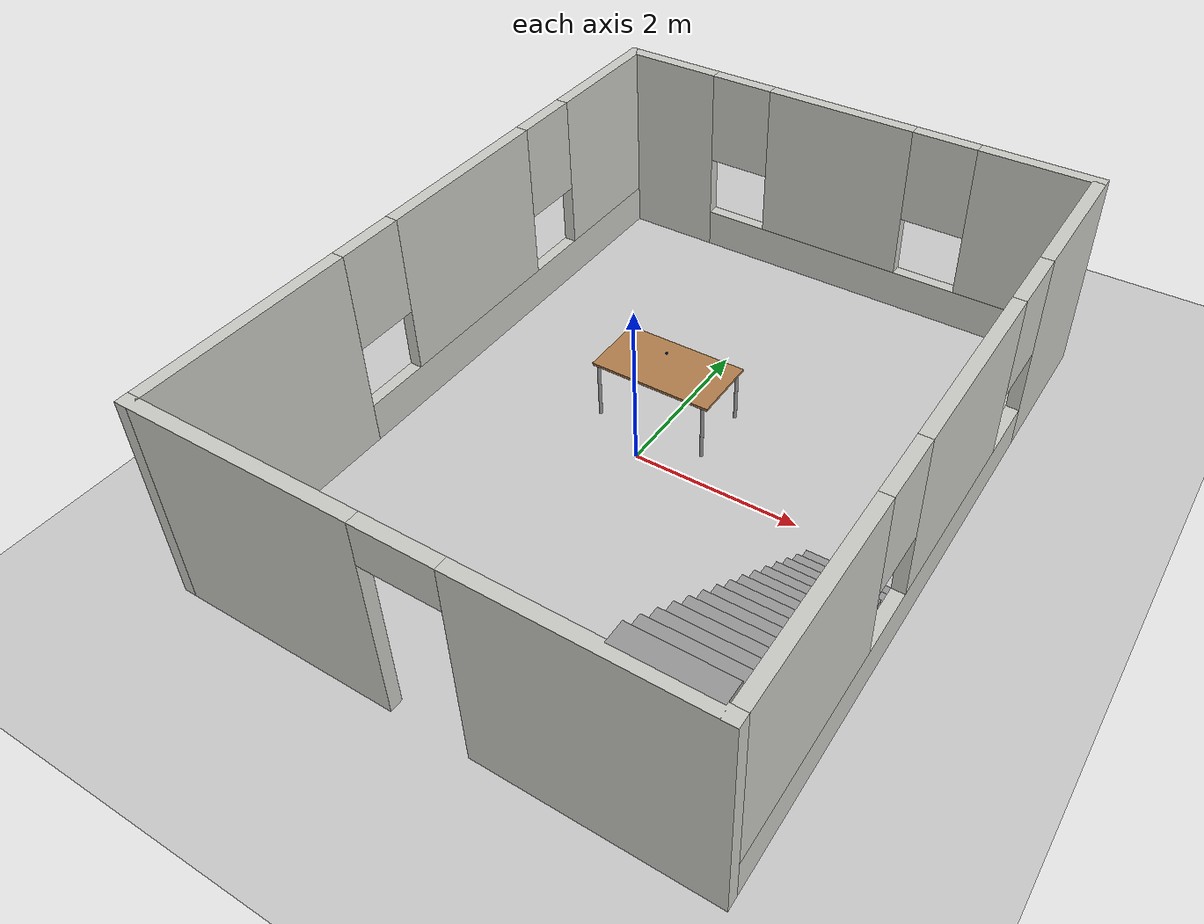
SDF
<sdf version="1.6">
 <world name="default">
  <model name="ground_plane">
   <static>1</static>
   <link name="link">
    <collision name="collision">
     <geometry><plane><normal>0 0 1</normal><size>100 100</size></plane></geometry>
     <surface><friction><ode><mu>100</mu><mu2>50</mu2></ode></friction></surface>
    </collision>
    <visual name="visual">
     <cast_shadows>0</cast_shadows>
     <geometry><plane><normal>0 0 1</normal><size>100 100</size></plane></geometry>
     <material>
      <script><uri>file://media/materials/scripts/gazebo.material</uri><name>Gazebo/Grey</name></script>
     </material>
    </visual>
   </link>
  </model>
  <model name="table">
   <static>1</static>
   <link name="table">
    <collision name="surface">
     <pose>0 0 1 0 -0 0</pose>
     <geometry><box><size>1.5 0.8 0.03</size></box></geometry>
     <surface><friction><ode><mu>0.6</mu><mu2>0.6</mu2></ode></friction></surface>
    </collision>
    <visual name="visual1">
     <pose>0 0 1 0 -0 0</pose>
     <geometry><box><size>1.5 0.8 0.03</size></box></geometry>
     <material>
      <script><uri>file://media/materials/scripts/gazebo.material</uri><name>Gazebo/Wood</name></script>
     </material>
    </visual>
    <collision name="front_left_leg">
     <pose>0.68 0.38 0.5 0 -0 0</pose>
     <geometry><cylinder><radius>0.02</radius><length>1</length></cylinder></geometry>
    </collision>
    <visual name="front_left_leg">
     <pose>0.68 0.38 0.5 0 -0 0</pose>
     <geometry><cylinder><radius>0.02</radius><length>1</length></cylinder></geometry>
     <material>
      <script><uri>file://media/materials/scripts/gazebo.material</uri><name>Gazebo/Grey</name></script>
     </material>
    </visual>
    <collision name="front_right_leg">
     <pose>0.68 -0.38 0.5 0 -0 0</pose>
     <geometry><cylinder><radius>0.02</radius><length>1</length></cylinder></geometry>
    </collision>
    <visual name="front_right_leg">
     <pose>0.68 -0.38 0.5 0 -0 0</pose>
     <geometry><cylinder><radius>0.02</radius><length>1</length></cylinder></geometry>
     <material>
      <script><uri>file://media/materials/scripts/gazebo.material</uri><name>Gazebo/Grey</name></script>
     </material>
    </visual>
    <collision name="back_right_leg">
     <pose>-0.68 -0.38 0.5 0 -0 0</pose>
     <geometry><cylinder><radius>0.02</radius><length>1</length></cylinder></geometry>
    </collision>
    <visual name="back_right_leg">
     <pose>-0.68 -0.38 0.5 0 -0 0</pose>
     <geometry><cylinder><radius>0.02</radius><length>1</length></cylinder></geometry>
     <material>
      <script><uri>file://media/materials/scripts/gazebo.material</uri><name>Gazebo/Grey</name></script>
     </material>
    </visual>
    <collision name="back_left_leg">
     <pose>-0.68 0.38 0.5 0 -0 0</pose>
     <geometry><cylinder><radius>0.02</radius><length>1</length></cylinder></geometry>
    </collision>
    <visual name="back_left_leg">
     <pose>-0.68 0.38 0.5 0 -0 0</pose>
     <geometry><cylinder><radius>0.02</radius><length>1</length></cylinder></geometry>
     <material>
      <script><uri>file://media/materials/scripts/gazebo.material</uri><name>Gazebo/Grey</name></script>
     </material>
    </visual>
   </link>
   <pose>-0.08 0.78 -0.29 0 -0 0</pose>
  </model>
  <model name="home">
   <pose>0.349793 0.122852 0 0 -0 0</pose>
   <link name="Stairs_0">
    <visual name="Stairs_0_Visual_0">
     <pose>2.45797 -0.622751 0.083333 0 -0 0</pose>
     <geometry><box><size>1 0.233333 0.166667</size></box></geometry>
     <material>
      <script><uri>file://media/materials/scripts/gazebo.material</uri><name>Gazebo/Grey</name></script>
      <ambient>1 1 1 1</ambient>
     </material>
     <meta><layer>0</layer></meta>
    </visual>
    <collision name="Stairs_0_Collision_0">
     <geometry><box><size>1 0.233333 0.166667</size></box></geometry>
     <pose>2.45797 -0.622751 0.083333 0 -0 0</pose>
    </collision>
    <visual name="Stairs_0_Visual_1">
     <pose>2.45797 -0.856085 0.25 0 -0 0</pose>
     <geometry><box><size>1 0.233333 0.166667</size></box></geometry>
     <material>
      <script><uri>file://media/materials/scripts/gazebo.material</uri><name>Gazebo/Grey</name></script>
      <ambient>1 1 1 1</ambient>
     </material>
     <meta><layer>0</layer></meta>
    </visual>
    <collision name="Stairs_0_Collision_1">
     <geometry><box><size>1 0.233333 0.166667</size></box></geometry>
     <pose>2.45797 -0.856085 0.25 0 -0 0</pose>
    </collision>
    <visual name="Stairs_0_Visual_2">
     <pose>2.45797 -1.08942 0.416667 0 -0 0</pose>
     <geometry><box><size>1 0.233333 0.166667</size></box></geometry>
     <material>
      <script><uri>file://media/materials/scripts/gazebo.material</uri><name>Gazebo/Grey</name></script>
      <ambient>1 1 1 1</ambient>
     </material>
     <meta><layer>0</layer></meta>
    </visual>
    <collision name="Stairs_0_Collision_2">
     <geometry><box><size>1 0.233333 0.166667</size></box></geometry>
     <pose>2.45797 -1.08942 0.416667 0 -0 0</pose>
    </collision>
    <visual name="Stairs_0_Visual_3">
     <pose>2.45797 -1.32275 0.583333 0 -0 0</pose>
     <geometry><box><size>1 0.233333 0.166667</size></box></geometry>
     <material>
      <script><uri>file://media/materials/scripts/gazebo.material</uri><name>Gazebo/Grey</name></script>
      <ambient>1 1 1 1</ambient>
     </material>
     <meta><layer>0</layer></meta>
    </visual>
    <collision name="Stairs_0_Collision_3">
     <geometry><box><size>1 0.233333 0.166667</size></box></geometry>
     <pose>2.45797 -1.32275 0.583333 0 -0 0</pose>
    </collision>
    <visual name="Stairs_0_Visual_4">
     <pose>2.45797 -1.55608 0.75 0 -0 0</pose>
     <geometry><box><size>1 0.233333 0.166667</size></box></geometry>
     <material>
      <script><uri>file://media/materials/scripts/gazebo.material</uri><name>Gazebo/Grey</name></script>
      <ambient>1 1 1 1</ambient>
     </material>
     <meta><layer>0</layer></meta>
    </visual>
    <collision name="Stairs_0_Collision_4">
     <geometry><box><size>1 0.233333 0.166667</size></box></geometry>
     <pose>2.45797 -1.55608 0.75 0 -0 0</pose>
    </collision>
    <visual name="Stairs_0_Visual_5">
     <pose>2.45797 -1.78942 0.916667 0 -0 0</pose>
     <geometry><box><size>1 0.233333 0.166667</size></box></geometry>
     <material>
      <script><uri>file://media/materials/scripts/gazebo.material</uri><name>Gazebo/Grey</name></script>
      <ambient>1 1 1 1</ambient>
     </material>
     <meta><layer>0</layer></meta>
    </visual>
    <collision name="Stairs_0_Collision_5">
     <geometry><box><size>1 0.233333 0.166667</size></box></geometry>
     <pose>2.45797 -1.78942 0.916667 0 -0 0</pose>
    </collision>
    <visual name="Stairs_0_Visual_6">
     <pose>2.45797 -2.02275 1.08333 0 -0 0</pose>
     <geometry><box><size>1 0.233333 0.166667</size></box></geometry>
     <material>
      <script><uri>file://media/materials/scripts/gazebo.material</uri><name>Gazebo/Grey</name></script>
      <ambient>1 1 1 1</ambient>
     </material>
     <meta><layer>0</layer></meta>
    </visual>
    <collision name="Stairs_0_Collision_6">
     <geometry><box><size>1 0.233333 0.166667</size></box></geometry>
     <pose>2.45797 -2.02275 1.08333 0 -0 0</pose>
    </collision>
    <visual name="Stairs_0_Visual_7">
     <pose>2.45797 -2.25609 1.25 0 -0 0</pose>
     <geometry><box><size>1 0.233333 0.166667</size></box></geometry>
     <material>
      <script><uri>file://media/materials/scripts/gazebo.material</uri><name>Gazebo/Grey</name></script>
      <ambient>1 1 1 1</ambient>
     </material>
     <meta><layer>0</layer></meta>
    </visual>
    <collision name="Stairs_0_Collision_7">
     <geometry><box><size>1 0.233333 0.166667</size></box></geometry>
     <pose>2.45797 -2.25609 1.25 0 -0 0</pose>
    </collision>
    <visual name="Stairs_0_Visual_8">
     <pose>2.45797 -2.48942 1.41667 0 -0 0</pose>
     <geometry><box><size>1 0.233333 0.166667</size></box></geometry>
     <material>
      <script><uri>file://media/materials/scripts/gazebo.material</uri><name>Gazebo/Grey</name></script>
      <ambient>1 1 1 1</ambient>
     </material>
     <meta><layer>0</layer></meta>
    </visual>
    <collision name="Stairs_0_Collision_8">
     <geometry><box><size>1 0.233333 0.166667</size></box></geometry>
     <pose>2.45797 -2.48942 1.41667 0 -0 0</pose>
    </collision>
    <visual name="Stairs_0_Visual_9">
     <pose>2.45797 -2.72275 1.58333 0 -0 0</pose>
     <geometry><box><size>1 0.233333 0.166667</size></box></geometry>
     <material>
      <script><uri>file://media/materials/scripts/gazebo.material</uri><name>Gazebo/Grey</name></script>
      <ambient>1 1 1 1</ambient>
     </material>
     <meta><layer>0</layer></meta>
    </visual>
    <collision name="Stairs_0_Collision_9">
     <geometry><box><size>1 0.233333 0.166667</size></box></geometry>
     <pose>2.45797 -2.72275 1.58333 0 -0 0</pose>
    </collision>
    <visual name="Stairs_0_Visual_10">
     <pose>2.45797 -2.95608 1.75 0 -0 0</pose>
     <geometry><box><size>1 0.233333 0.166667</size></box></geometry>
     <material>
      <script><uri>file://media/materials/scripts/gazebo.material</uri><name>Gazebo/Grey</name></script>
      <ambient>1 1 1 1</ambient>
     </material>
     <meta><layer>0</layer></meta>
    </visual>
    <collision name="Stairs_0_Collision_10">
     <geometry><box><size>1 0.233333 0.166667</size></box></geometry>
     <pose>2.45797 -2.95608 1.75 0 -0 0</pose>
    </collision>
    <visual name="Stairs_0_Visual_11">
     <pose>2.45797 -3.18942 1.91667 0 -0 0</pose>
     <geometry><box><size>1 0.233333 0.166667</size></box></geometry>
     <material>
      <script><uri>file://media/materials/scripts/gazebo.material</uri><name>Gazebo/Grey</name></script>
      <ambient>1 1 1 1</ambient>
     </material>
     <meta><layer>0</layer></meta>
    </visual>
    <collision name="Stairs_0_Collision_11">
     <geometry><box><size>1 0.233333 0.166667</size></box></geometry>
     <pose>2.45797 -3.18942 1.91667 0 -0 0</pose>
    </collision>
    <visual name="Stairs_0_Visual_12">
     <pose>2.45797 -3.42275 2.08333 0 -0 0</pose>
     <geometry><box><size>1 0.233333 0.166667</size></box></geometry>
     <material>
      <script><uri>file://media/materials/scripts/gazebo.material</uri><name>Gazebo/Grey</name></script>
      <ambient>1 1 1 1</ambient>
     </material>
     <meta><layer>0</layer></meta>
    </visual>
    <collision name="Stairs_0_Collision_12">
     <geometry><box><size>1 0.233333 0.166667</size></box></geometry>
     <pose>2.45797 -3.42275 2.08333 0 -0 0</pose>
    </collision>
    <visual name="Stairs_0_Visual_13">
     <pose>2.45797 -3.65609 2.25 0 -0 0</pose>
     <geometry><box><size>1 0.233333 0.166667</size></box></geometry>
     <material>
      <script><uri>file://media/materials/scripts/gazebo.material</uri><name>Gazebo/Grey</name></script>
      <ambient>1 1 1 1</ambient>
     </material>
     <meta><layer>0</layer></meta>
    </visual>
    <collision name="Stairs_0_Collision_13">
     <geometry><box><size>1 0.233333 0.166667</size></box></geometry>
     <pose>2.45797 -3.65609 2.25 0 -0 0</pose>
    </collision>
    <visual name="Stairs_0_Visual_14">
     <pose>2.45797 -3.88942 2.41667 0 -0 0</pose>
     <geometry><box><size>1 0.233333 0.166667</size></box></geometry>
     <material>
      <script><uri>file://media/materials/scripts/gazebo.material</uri><name>Gazebo/Grey</name></script>
      <ambient>1 1 1 1</ambient>
     </material>
     <meta><layer>0</layer></meta>
    </visual>
    <collision name="Stairs_0_Collision_14">
     <geometry><box><size>1 0.233333 0.166667</size></box></geometry>
     <pose>2.45797 -3.88942 2.41667 0 -0 0</pose>
    </collision>
   </link>
   <link name="Wall_0">
    <pose>0 -4.05 0 0 -0 3.14159</pose>
    <visual name="Wall_0_Visual_0">
     <pose>-1.80618 0 1.25 0 -0 0</pose>
     <geometry><box><size>2.63764 0.15 2.5</size></box></geometry>
     <material>
      <script><uri>file://media/materials/scripts/gazebo.material</uri><name>Gazebo/CeilingTiled</name></script>
      <ambient>1 1 1 1</ambient>
     </material>
     <meta><layer>0</layer></meta>
    </visual>
    <collision name="Wall_0_Collision_0">
     <geometry><box><size>2.63764 0.15 2.5</size></box></geometry>
     <pose>-1.80618 0 1.25 0 -0 0</pose>
    </collision>
    <visual name="Wall_0_Visual_1">
     <pose>1.76882 0 1.25 0 -0 0</pose>
     <geometry><box><size>2.71236 0.15 2.5</size></box></geometry>
     <material>
      <script><uri>file://media/materials/scripts/gazebo.material</uri><name>Gazebo/CeilingTiled</name></script>
      <ambient>1 1 1 1</ambient>
     </material>
     <meta><layer>0</layer></meta>
    </visual>
    <collision name="Wall_0_Collision_1">
     <geometry><box><size>2.71236 0.15 2.5</size></box></geometry>
     <pose>1.76882 0 1.25 0 -0 0</pose>
    </collision>
    <visual name="Wall_0_Visual_2">
     <pose>-0.037357 0 2.25 0 -0 0</pose>
     <geometry><box><size>0.9 0.15 0.5</size></box></geometry>
     <material>
      <script><uri>file://media/materials/scripts/gazebo.material</uri><name>Gazebo/CeilingTiled</name></script>
      <ambient>1 1 1 1</ambient>
     </material>
     <meta><layer>0</layer></meta>
    </visual>
    <collision name="Wall_0_Collision_2">
     <geometry><box><size>0.9 0.15 0.5</size></box></geometry>
     <pose>-0.037357 0 2.25 0 -0 0</pose>
    </collision>
   </link>
   <link name="Wall_1">
    <pose>-3.05 0 0 0 -0 1.5708</pose>
    <visual name="Wall_1_Visual_0">
     <pose>-2.77874 0 1.25 0 -0 0</pose>
     <geometry><box><size>2.69252 0.15 2.5</size></box></geometry>
     <material>
      <script><uri>file://media/materials/scripts/gazebo.material</uri><name>Gazebo/CeilingTiled</name></script>
      <ambient>1 1 1 1</ambient>
     </material>
     <meta><layer>0</layer></meta>
    </visual>
    <collision name="Wall_1_Collision_0">
     <geometry><box><size>2.69252 0.15 2.5</size></box></geometry>
     <pose>-2.77874 0 1.25 0 -0 0</pose>
    </collision>
    <visual name="Wall_1_Visual_1">
     <pose>1.34626 0 0.25 0 -0 0</pose>
     <geometry><box><size>5.55748 0.15 0.5</size></box></geometry>
     <material>
      <script><uri>file://media/materials/scripts/gazebo.material</uri><name>Gazebo/CeilingTiled</name></script>
      <ambient>1 1 1 1</ambient>
     </material>
     <meta><layer>0</layer></meta>
    </visual>
    <collision name="Wall_1_Collision_1">
     <geometry><box><size>5.55748 0.15 0.5</size></box></geometry>
     <pose>1.34626 0 0.25 0 -0 0</pose>
    </collision>
    <visual name="Wall_1_Visual_2">
     <pose>0.497036 0 1.5 0 -0 0</pose>
     <geometry><box><size>2.25902 0.15 2</size></box></geometry>
     <material>
      <script><uri>file://media/materials/scripts/gazebo.material</uri><name>Gazebo/CeilingTiled</name></script>
      <ambient>1 1 1 1</ambient>
     </material>
     <meta><layer>0</layer></meta>
    </visual>
    <collision name="Wall_1_Collision_2">
     <geometry><box><size>2.25902 0.15 2</size></box></geometry>
     <pose>0.497036 0 1.5 0 -0 0</pose>
    </collision>
    <visual name="Wall_1_Visual_3">
     <pose>3.27577 0 1.5 0 -0 0</pose>
     <geometry><box><size>1.69845 0.15 2</size></box></geometry>
     <material>
      <script><uri>file://media/materials/scripts/gazebo.material</uri><name>Gazebo/CeilingTiled</name></script>
      <ambient>1 1 1 1</ambient>
     </material>
     <meta><layer>0</layer></meta>
    </visual>
    <collision name="Wall_1_Collision_3">
     <geometry><box><size>1.69845 0.15 2</size></box></geometry>
     <pose>3.27577 0 1.5 0 -0 0</pose>
    </collision>
    <visual name="Wall_1_Visual_4">
     <pose>-1.03248 0 1.9 0 -0 0</pose>
     <geometry><box><size>0.8 0.15 1.2</size></box></geometry>
     <material>
      <script><uri>file://media/materials/scripts/gazebo.material</uri><name>Gazebo/CeilingTiled</name></script>
      <ambient>1 1 1 1</ambient>
     </material>
     <meta><layer>0</layer></meta>
    </visual>
    <collision name="Wall_1_Collision_4">
     <geometry><box><size>0.8 0.15 1.2</size></box></geometry>
     <pose>-1.03248 0 1.9 0 -0 0</pose>
    </collision>
    <visual name="Wall_1_Visual_5">
     <pose>2.02655 0 1.9 0 -0 0</pose>
     <geometry><box><size>0.8 0.15 1.2</size></box></geometry>
     <material>
      <script><uri>file://media/materials/scripts/gazebo.material</uri><name>Gazebo/CeilingTiled</name></script>
      <ambient>1 1 1 1</ambient>
     </material>
     <meta><layer>0</layer></meta>
    </visual>
    <collision name="Wall_1_Collision_5">
     <geometry><box><size>0.8 0.15 1.2</size></box></geometry>
     <pose>2.02655 0 1.9 0 -0 0</pose>
    </collision>
   </link>
   <link name="Wall_2">
    <pose>0 4.05 0 0 -0 0</pose>
    <visual name="Wall_2_Visual_0">
     <pose>-2.47533 0 1.25 0 -0 0</pose>
     <geometry><box><size>1.29935 0.15 2.5</size></box></geometry>
     <material>
      <script><uri>file://media/materials/scripts/gazebo.material</uri><name>Gazebo/CeilingTiled</name></script>
      <ambient>1 1 1 1</ambient>
     </material>
     <meta><layer>0</layer></meta>
    </visual>
    <collision name="Wall_2_Collision_0">
     <geometry><box><size>1.29935 0.15 2.5</size></box></geometry>
     <pose>-2.47533 0 1.25 0 -0 0</pose>
    </collision>
    <visual name="Wall_2_Visual_1">
     <pose>0.649673 0 0.25 0 -0 0</pose>
     <geometry><box><size>4.95065 0.15 0.5</size></box></geometry>
     <material>
      <script><uri>file://media/materials/scripts/gazebo.material</uri><name>Gazebo/CeilingTiled</name></script>
      <ambient>1 1 1 1</ambient>
     </material>
     <meta><layer>0</layer></meta>
    </visual>
    <collision name="Wall_2_Collision_1">
     <geometry><box><size>4.95065 0.15 0.5</size></box></geometry>
     <pose>0.649673 0 0.25 0 -0 0</pose>
    </collision>
    <visual name="Wall_2_Visual_2">
     <pose>-0.082344 0 1.5 0 -0 0</pose>
     <geometry><box><size>1.88662 0.15 2</size></box></geometry>
     <material>
      <script><uri>file://media/materials/scripts/gazebo.material</uri><name>Gazebo/CeilingTiled</name></script>
      <ambient>1 1 1 1</ambient>
     </material>
     <meta><layer>0</layer></meta>
    </visual>
    <collision name="Wall_2_Collision_2">
     <geometry><box><size>1.88662 0.15 2</size></box></geometry>
     <pose>-0.082344 0 1.5 0 -0 0</pose>
    </collision>
    <visual name="Wall_2_Visual_3">
     <pose>2.39298 0 1.5 0 -0 0</pose>
     <geometry><box><size>1.46403 0.15 2</size></box></geometry>
     <material>
      <script><uri>file://media/materials/scripts/gazebo.material</uri><name>Gazebo/CeilingTiled</name></script>
      <ambient>1 1 1 1</ambient>
     </material>
     <meta><layer>0</layer></meta>
    </visual>
    <collision name="Wall_2_Collision_3">
     <geometry><box><size>1.46403 0.15 2</size></box></geometry>
     <pose>2.39298 0 1.5 0 -0 0</pose>
    </collision>
    <visual name="Wall_2_Visual_4">
     <pose>-1.42565 0 1.9 0 -0 0</pose>
     <geometry><box><size>0.8 0.15 1.2</size></box></geometry>
     <material>
      <script><uri>file://media/materials/scripts/gazebo.material</uri><name>Gazebo/CeilingTiled</name></script>
      <ambient>1 1 1 1</ambient>
     </material>
     <meta><layer>0</layer></meta>
    </visual>
    <collision name="Wall_2_Collision_4">
     <geometry><box><size>0.8 0.15 1.2</size></box></geometry>
     <pose>-1.42565 0 1.9 0 -0 0</pose>
    </collision>
    <visual name="Wall_2_Visual_5">
     <pose>1.26097 0 1.9 0 -0 0</pose>
     <geometry><box><size>0.8 0.15 1.2</size></box></geometry>
     <material>
      <script><uri>file://media/materials/scripts/gazebo.material</uri><name>Gazebo/CeilingTiled</name></script>
      <ambient>1 1 1 1</ambient>
     </material>
     <meta><layer>0</layer></meta>
    </visual>
    <collision name="Wall_2_Collision_5">
     <geometry><box><size>0.8 0.15 1.2</size></box></geometry>
     <pose>1.26097 0 1.9 0 -0 0</pose>
    </collision>
   </link>
   <link name="Wall_3">
    <pose>3.05 0 0 0 0 -1.5708</pose>
    <visual name="Wall_3_Visual_0">
     <pose>-3.20927 0 1.25 0 -0 0</pose>
     <geometry><box><size>1.83145 0.15 2.5</size></box></geometry>
     <material>
      <script><uri>file://media/materials/scripts/gazebo.material</uri><name>Gazebo/CeilingTiled</name></script>
      <ambient>1 1 1 1</ambient>
     </material>
     <meta><layer>0</layer></meta>
    </visual>
    <collision name="Wall_3_Collision_0">
     <geometry><box><size>1.83145 0.15 2.5</size></box></geometry>
     <pose>-3.20927 0 1.25 0 -0 0</pose>
    </collision>
    <visual name="Wall_3_Visual_1">
     <pose>0.915727 0 0.25 0 -0 0</pose>
     <geometry><box><size>6.41855 0.15 0.5</size></box></geometry>
     <material>
      <script><uri>file://media/materials/scripts/gazebo.material</uri><name>Gazebo/CeilingTiled</name></script>
      <ambient>1 1 1 1</ambient>
     </material>
     <meta><layer>0</layer></meta>
    </visual>
    <collision name="Wall_3_Collision_1">
     <geometry><box><size>6.41855 0.15 0.5</size></box></geometry>
     <pose>0.915727 0 0.25 0 -0 0</pose>
    </collision>
    <visual name="Wall_3_Visual_2">
     <pose>-0.350735 0 1.5 0 -0 0</pose>
     <geometry><box><size>2.28562 0.15 2</size></box></geometry>
     <material>
      <script><uri>file://media/materials/scripts/gazebo.material</uri><name>Gazebo/CeilingTiled</name></script>
      <ambient>1 1 1 1</ambient>
     </material>
     <meta><layer>0</layer></meta>
    </visual>
    <collision name="Wall_3_Collision_2">
     <geometry><box><size>2.28562 0.15 2</size></box></geometry>
     <pose>-0.350735 0 1.5 0 -0 0</pose>
    </collision>
    <visual name="Wall_3_Visual_3">
     <pose>2.85854 0 1.5 0 -0 0</pose>
     <geometry><box><size>2.53292 0.15 2</size></box></geometry>
     <material>
      <script><uri>file://media/materials/scripts/gazebo.material</uri><name>Gazebo/CeilingTiled</name></script>
      <ambient>1 1 1 1</ambient>
     </material>
     <meta><layer>0</layer></meta>
    </visual>
    <collision name="Wall_3_Collision_3">
     <geometry><box><size>2.53292 0.15 2</size></box></geometry>
     <pose>2.85854 0 1.5 0 -0 0</pose>
    </collision>
    <visual name="Wall_3_Visual_4">
     <pose>-1.89355 0 1.9 0 -0 0</pose>
     <geometry><box><size>0.8 0.15 1.2</size></box></geometry>
     <material>
      <script><uri>file://media/materials/scripts/gazebo.material</uri><name>Gazebo/CeilingTiled</name></script>
      <ambient>1 1 1 1</ambient>
     </material>
     <meta><layer>0</layer></meta>
    </visual>
    <collision name="Wall_3_Collision_4">
     <geometry><box><size>0.8 0.15 1.2</size></box></geometry>
     <pose>-1.89355 0 1.9 0 -0 0</pose>
    </collision>
    <visual name="Wall_3_Visual_5">
     <pose>1.19208 0 1.9 0 -0 0</pose>
     <geometry><box><size>0.8 0.15 1.2</size></box></geometry>
     <material>
      <script><uri>file://media/materials/scripts/gazebo.material</uri><name>Gazebo/CeilingTiled</name></script>
      <ambient>1 1 1 1</ambient>
     </material>
     <meta><layer>0</layer></meta>
    </visual>
    <collision name="Wall_3_Collision_5">
     <geometry><box><size>0.8 0.15 1.2</size></box></geometry>
     <pose>1.19208 0 1.9 0 -0 0</pose>
    </collision>
   </link>
   <static>1</static>
  </model>
  <model name="blue_box_0.02m_clone_0">
   <link name="link_0">
    <inertial>
     <mass>0.01</mass>
     <inertia>
      <ixx>0.000166667</ixx>
      <ixy>0</ixy>
      <ixz>0</ixz>
      <iyy>0.000166667</iyy>
      <iyz>0</iyz>
      <izz>0.000166667</izz>
     </inertia>
    </inertial>
    <visual name="visual">
     <geometry><box><size>0.02 0.02 0.02</size></box></geometry>
     <material>
      <lighting>1</lighting>
      <script><uri>file://media/materials/scripts/gazebo.material</uri><name>Gazebo/Blue</name></script>
      <shader type="normal_map_object_space"><normal_map>__default__</normal_map></shader>
      <ambient>0 0 1 1</ambient>
      <diffuse>0.7 0.7 0.7 1</diffuse>
      <specular>0.01 0.01 0.01 1</specular>
      <emissive>0 0 0 1</emissive>
     </material>
    </visual>
    <collision name="collision">
     <geometry><box><size>0.02 0.02 0.02</size></box></geometry>
     <surface>
      <friction>
       <ode><mu>1</mu><mu2>1</mu2><fdir1>0 0 0</fdir1><slip1>0</slip1><slip2>0</slip2></ode>
       <torsional>
        <coefficient>1</coefficient>
        <patch_radius>0</patch_radius>
        <surface_radius>0</surface_radius>
        <use_patch_radius>1</use_patch_radius>
        <ode><slip>0</slip></ode>
       </torsional>
      </friction>
      <bounce><restitution_coefficient>0</restitution_coefficient><threshold>1e+06</threshold></bounce>
      <contact>
       <collide_without_contact>0</collide_without_contact>
       <collide_without_contact_bitmask>1</collide_without_contact_bitmask>
       <collide_bitmask>1</collide_bitmask>
       <ode>
        <soft_cfm>0</soft_cfm>
        <soft_erp>0.2</soft_erp>
        <kp>1e+13</kp>
        <kd>1</kd>
        <max_vel>0.01</max_vel>
        <min_depth>0</min_depth>
       </ode>
       <bullet>
        <split_impulse>1</split_impulse>
        <split_impulse_penetration_threshold>-0.01</split_impulse_penetration_threshold>
        <soft_cfm>0</soft_cfm>
        <soft_erp>0.2</soft_erp>
        <kp>1e+13</kp>
        <kd>1</kd>
       </bullet>
      </contact>
     </surface>
    </collision>
   </link>
   <static>0</static>
   <pose>-0.13959 0.85412 0.836823 0 -0 0</pose>
  </model>
 </world>
</sdf>
